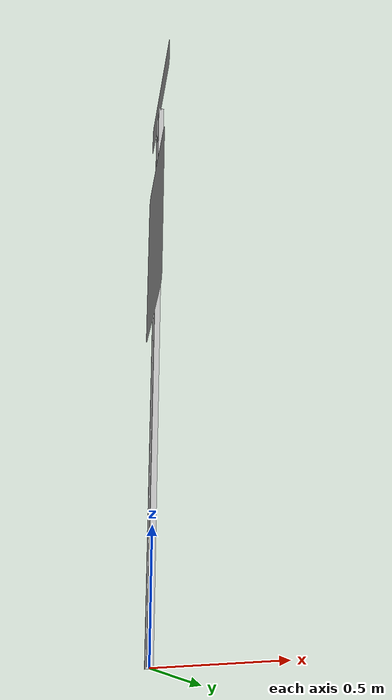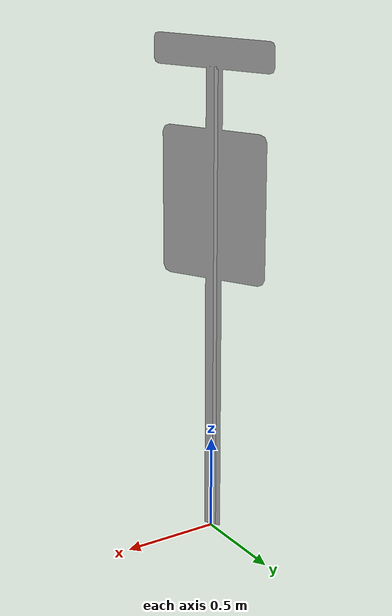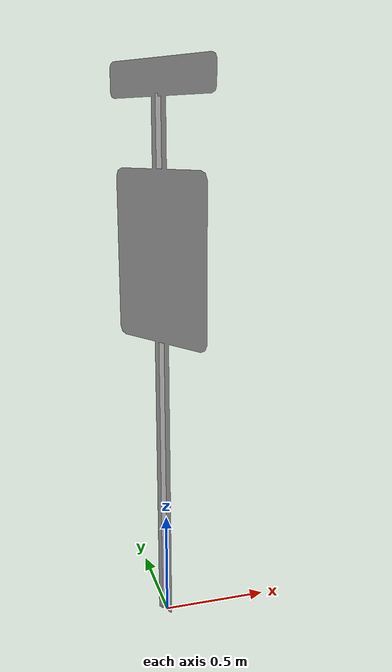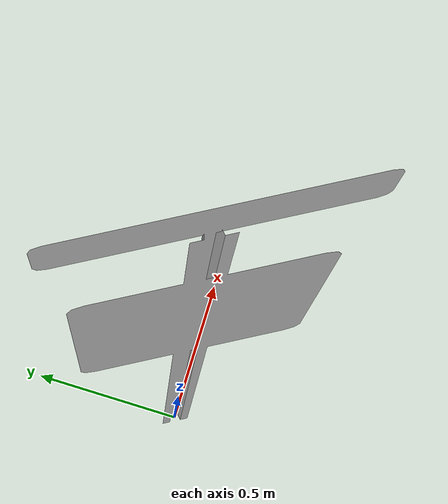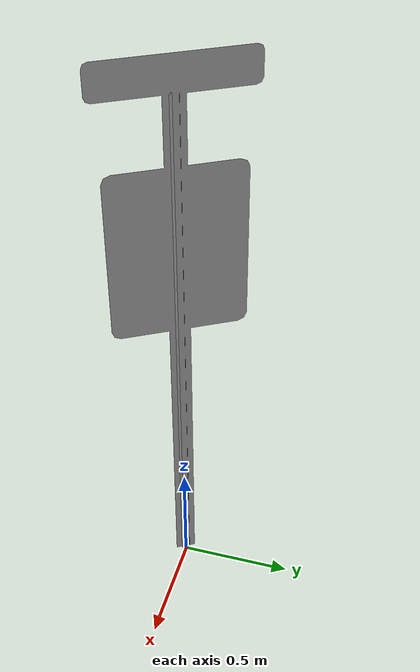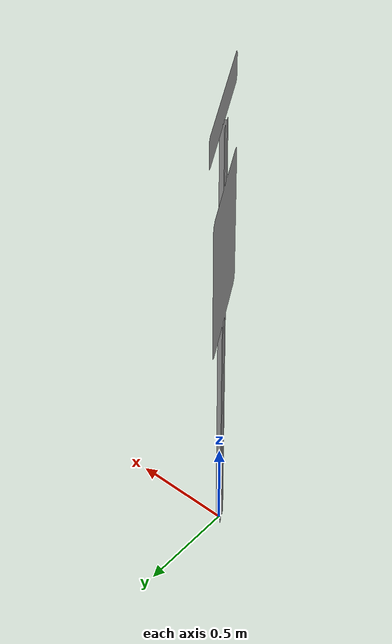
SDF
<?xml version="1.0" ?>
<sdf version="1.5">
  <model name="William Street">
    <link name="link">
      <collision name="collision">
        <geometry>
          <mesh>
            <uri>model://williams-sign/meshes/williams-sign.dae</uri>
          </mesh>
        </geometry>
      </collision>
      <visual name="visual">
        <geometry>
          <mesh>
            <uri>model://williams-sign/meshes/williams-sign.dae</uri>
          </mesh>
        </geometry>
      </visual>
    </link>
  </model>
</sdf>
